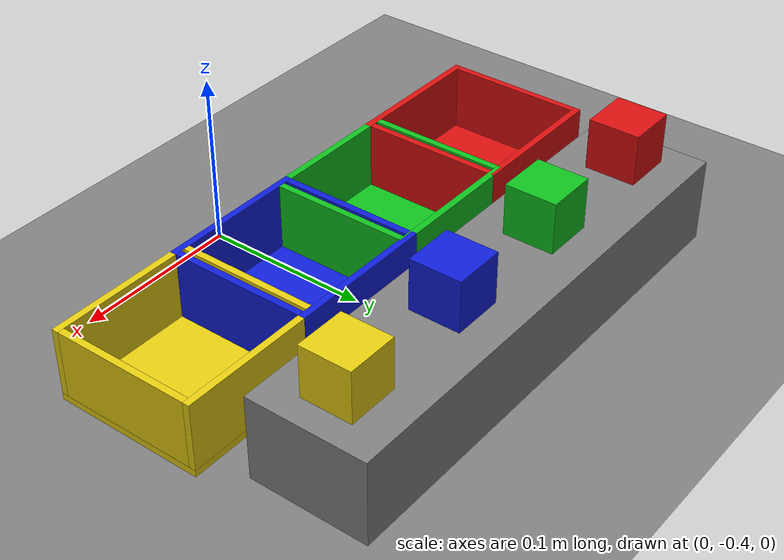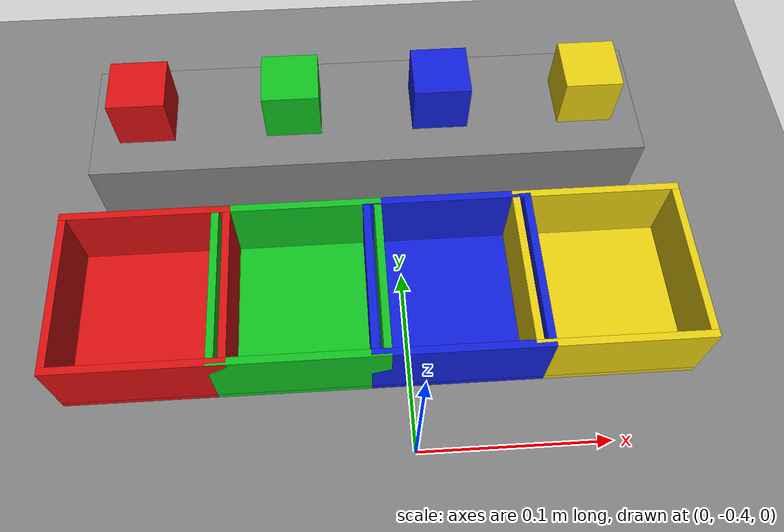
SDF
<?xml version="1.0" ?>
<sdf version="1.9">
  <world name="color_blocks_world">

    <physics name="1ms" type="ignored">
      <max_step_size>0.001</max_step_size>
      <real_time_factor>1.0</real_time_factor>
    </physics>

    <plugin filename="ignition-gazebo-physics-system" name="ignition::gazebo::systems::Physics"/>
    <plugin filename="ignition-gazebo-user-commands-system" name="ignition::gazebo::systems::UserCommands"/>
    <plugin filename="ignition-gazebo-scene-broadcaster-system" name="ignition::gazebo::systems::SceneBroadcaster"/>
    <plugin filename="libjetrover-grasp-velocity-system.so" name="jetrover::gazebo::systems::GraspVelocitySystem">
      <topic>/grasp/entity_command</topic>
      <command_timeout>0.2</command_timeout>
    </plugin>
    <plugin filename="ignition-gazebo-sensors-system" name="ignition::gazebo::systems::Sensors">
      <render_engine>ogre2</render_engine>
    </plugin>
    <plugin filename="ignition-gazebo-imu-system" name="ignition::gazebo::systems::Imu"/>

    <scene>
      <ambient>0.6 0.6 0.6 1</ambient>
      <background>0.7 0.7 0.75 1</background>
    </scene>

    <light type="directional" name="sun">
      <cast_shadows>true</cast_shadows>
      <pose>0 0 10 0 0 0</pose>
      <diffuse>0.9 0.9 0.9 1</diffuse>
      <specular>0.2 0.2 0.2 1</specular>
      <attenuation>
        <range>1000</range>
        <constant>0.9</constant>
        <linear>0.01</linear>
        <quadratic>0.001</quadratic>
      </attenuation>
      <direction>-0.3 0.1 -0.95</direction>
    </light>

    <!-- Fill light from the opposite side: kills the hard shadow that would
         otherwise push a block's LAB values outside its threshold range. -->
    <light type="directional" name="fill">
      <cast_shadows>false</cast_shadows>
      <pose>0 0 5 0 0 0</pose>
      <diffuse>0.4 0.4 0.4 1</diffuse>
      <specular>0.0 0.0 0.0 1</specular>
      <direction>0.6 -0.3 -0.7</direction>
    </light>

    <model name="ground_plane">
      <static>true</static>
      <link name="link">
        <collision name="collision">
          <geometry>
            <plane>
              <normal>0 0 1</normal>
              <size>50 50</size>
            </plane>
          </geometry>
          <surface>
            <friction>
              <ode>
                <mu>1.0</mu>
                <mu2>1.0</mu2>
              </ode>
            </friction>
          </surface>
        </collision>
        <visual name="visual">
          <geometry>
            <plane>
              <normal>0 0 1</normal>
              <size>50 50</size>
            </plane>
          </geometry>
          <!-- Neutral mid-grey: maximises LAB separation from every block
               colour, so the floor never leaks into a colour mask. -->
          <material>
            <ambient>0.5 0.5 0.5 1</ambient>
            <diffuse>0.5 0.5 0.5 1</diffuse>
            <specular>0.1 0.1 0.1 1</specular>
          </material>
        </visual>
      </link>
    </model>

    <!-- ================= pick blocks (3 cm cubes, dynamic) ================= -->

    <model name="block_red">
      <pose>-0.135 -0.22 0.065 0 0 0</pose>
      <link name="link">
        <inertial>
          <mass>0.05</mass>
          <inertia>
            <ixx>7.5e-6</ixx><ixy>0</ixy><ixz>0</ixz>
            <iyy>7.5e-6</iyy><iyz>0</iyz>
            <izz>7.5e-6</izz>
          </inertia>
        </inertial>
        <collision name="collision">
          <geometry><box><size>0.03 0.03 0.03</size></box></geometry>
          <surface>
            <friction><ode><mu>1.2</mu><mu2>1.2</mu2></ode></friction>
          </surface>
        </collision>
        <visual name="visual">
          <geometry><box><size>0.03 0.03 0.03</size></box></geometry>
          <material>
            <ambient>0.75 0.05 0.05 1</ambient>
            <diffuse>0.85 0.06 0.06 1</diffuse>
            <specular>0.05 0.05 0.05 1</specular>
          </material>
        </visual>
      </link>
      <plugin filename="ignition-gazebo-velocity-control-system" name="ignition::gazebo::systems::VelocityControl">
        <topic>/model/block_red/cmd_vel</topic>
      </plugin>
    </model>

    <model name="block_green">
      <pose>-0.055 -0.22 0.065 0 0 0</pose>
      <link name="link">
        <inertial>
          <mass>0.05</mass>
          <inertia>
            <ixx>7.5e-6</ixx><ixy>0</ixy><ixz>0</ixz>
            <iyy>7.5e-6</iyy><iyz>0</iyz>
            <izz>7.5e-6</izz>
          </inertia>
        </inertial>
        <collision name="collision">
          <geometry><box><size>0.03 0.03 0.03</size></box></geometry>
          <surface>
            <friction><ode><mu>1.2</mu><mu2>1.2</mu2></ode></friction>
          </surface>
        </collision>
        <visual name="visual">
          <geometry><box><size>0.03 0.03 0.03</size></box></geometry>
          <material>
            <ambient>0.05 0.65 0.10 1</ambient>
            <diffuse>0.06 0.75 0.12 1</diffuse>
            <specular>0.05 0.05 0.05 1</specular>
          </material>
        </visual>
      </link>
      <plugin filename="ignition-gazebo-velocity-control-system" name="ignition::gazebo::systems::VelocityControl">
        <topic>/model/block_green/cmd_vel</topic>
      </plugin>
    </model>

    <model name="block_shelf">
      <static>true</static>
      <pose>-0.015 -0.22 0.025 0 0 0</pose>
      <link name="link">
        <collision name="collision">
          <geometry><box><size>0.30 0.07 0.05</size></box></geometry>
        </collision>
        <visual name="visual">
          <geometry><box><size>0.30 0.07 0.05</size></box></geometry>
          <material>
            <ambient>0.5 0.5 0.5 1</ambient>
            <diffuse>0.5 0.5 0.5 1</diffuse>
          </material>
        </visual>
      </link>
    </model>

    <model name="block_blue">
      <pose>0.025 -0.22 0.065 0 0 0</pose>
      <link name="link">
        <inertial>
          <mass>0.05</mass>
          <inertia>
            <ixx>7.5e-6</ixx><ixy>0</ixy><ixz>0</ixz>
            <iyy>7.5e-6</iyy><iyz>0</iyz>
            <izz>7.5e-6</izz>
          </inertia>
        </inertial>
        <collision name="collision">
          <geometry><box><size>0.03 0.03 0.03</size></box></geometry>
          <surface>
            <friction><ode><mu>1.2</mu><mu2>1.2</mu2></ode></friction>
          </surface>
        </collision>
        <visual name="visual">
          <geometry><box><size>0.03 0.03 0.03</size></box></geometry>
          <material>
            <ambient>0.05 0.10 0.75 1</ambient>
            <diffuse>0.06 0.12 0.85 1</diffuse>
            <specular>0.05 0.05 0.05 1</specular>
          </material>
        </visual>
      </link>
      <plugin filename="ignition-gazebo-velocity-control-system" name="ignition::gazebo::systems::VelocityControl">
        <topic>/model/block_blue/cmd_vel</topic>
      </plugin>
    </model>

    <model name="block_yellow">
      <pose>0.105 -0.22 0.065 0 0 0</pose>
      <link name="link">
        <inertial>
          <mass>0.05</mass>
          <inertia>
            <ixx>7.5e-6</ixx><ixy>0</ixy><ixz>0</ixz>
            <iyy>7.5e-6</iyy><iyz>0</iyz>
            <izz>7.5e-6</izz>
          </inertia>
        </inertial>
        <collision name="collision">
          <geometry><box><size>0.03 0.03 0.03</size></box></geometry>
          <surface>
            <friction><ode><mu>1.2</mu><mu2>1.2</mu2></ode></friction>
          </surface>
        </collision>
        <visual name="visual">
          <geometry><box><size>0.03 0.03 0.03</size></box></geometry>
          <material>
            <ambient>0.80 0.70 0.05 1</ambient>
            <diffuse>0.90 0.80 0.06 1</diffuse>
            <specular>0.05 0.05 0.05 1</specular>
          </material>
        </visual>
      </link>
      <plugin filename="ignition-gazebo-velocity-control-system" name="ignition::gazebo::systems::VelocityControl">
        <topic>/model/block_yellow/cmd_vel</topic>
      </plugin>
    </model>

    <!-- ============ sorting bins (static place targets, shallow open boxes) -->

    <model name="bin_red">
      <static>true</static>
      <pose>-0.135 -0.32 0.002 0 0 0</pose>
      <link name="link">
        <!-- 9 cm square floor, 4 mm thick, centred at the bin pose -->
        <collision name="floor_collision">
          <geometry><box><size>0.09 0.09 0.004</size></box></geometry>
        </collision>
        <visual name="floor_visual">
          <geometry><box><size>0.09 0.09 0.004</size></box></geometry>
          <material>
            <ambient>0.75 0.05 0.05 1</ambient>
            <diffuse>0.85 0.06 0.06 1</diffuse>
          </material>
        </visual>
        <!-- Four 4 cm-high, 4 mm-thick walls; inner opening is 8.2 cm square -->
        <collision name="wall_front_collision">
          <pose>0 -0.043 0.022 0 0 0</pose>
          <geometry><box><size>0.09 0.004 0.04</size></box></geometry>
        </collision>
        <visual name="wall_front_visual">
          <pose>0 -0.043 0.022 0 0 0</pose>
          <geometry><box><size>0.09 0.004 0.04</size></box></geometry>
          <material>
            <ambient>0.75 0.05 0.05 1</ambient>
            <diffuse>0.85 0.06 0.06 1</diffuse>
          </material>
        </visual>
        <collision name="wall_back_collision">
          <pose>0 0.043 0.022 0 0 0</pose>
          <geometry><box><size>0.09 0.004 0.04</size></box></geometry>
        </collision>
        <visual name="wall_back_visual">
          <pose>0 0.043 0.022 0 0 0</pose>
          <geometry><box><size>0.09 0.004 0.04</size></box></geometry>
          <material>
            <ambient>0.75 0.05 0.05 1</ambient>
            <diffuse>0.85 0.06 0.06 1</diffuse>
          </material>
        </visual>
        <collision name="wall_left_collision">
          <pose>-0.043 0 0.022 0 0 0</pose>
          <geometry><box><size>0.004 0.082 0.04</size></box></geometry>
        </collision>
        <visual name="wall_left_visual">
          <pose>-0.043 0 0.022 0 0 0</pose>
          <geometry><box><size>0.004 0.082 0.04</size></box></geometry>
          <material>
            <ambient>0.75 0.05 0.05 1</ambient>
            <diffuse>0.85 0.06 0.06 1</diffuse>
          </material>
        </visual>
        <collision name="wall_right_collision">
          <pose>0.043 0 0.022 0 0 0</pose>
          <geometry><box><size>0.004 0.082 0.04</size></box></geometry>
        </collision>
        <visual name="wall_right_visual">
          <pose>0.043 0 0.022 0 0 0</pose>
          <geometry><box><size>0.004 0.082 0.04</size></box></geometry>
          <material>
            <ambient>0.75 0.05 0.05 1</ambient>
            <diffuse>0.85 0.06 0.06 1</diffuse>
          </material>
        </visual>
      </link>
    </model>

    <model name="bin_green">
      <static>true</static>
      <pose>-0.055 -0.32 0.002 0 0 0</pose>
      <link name="link">
        <!-- 9 cm square floor, 4 mm thick, centred at the bin pose -->
        <collision name="floor_collision">
          <geometry><box><size>0.09 0.09 0.004</size></box></geometry>
        </collision>
        <visual name="floor_visual">
          <geometry><box><size>0.09 0.09 0.004</size></box></geometry>
          <material>
            <ambient>0.05 0.65 0.10 1</ambient>
            <diffuse>0.06 0.75 0.12 1</diffuse>
          </material>
        </visual>
        <!-- Four 4 cm-high, 4 mm-thick walls; inner opening is 8.2 cm square -->
        <collision name="wall_front_collision">
          <pose>0 -0.043 0.022 0 0 0</pose>
          <geometry><box><size>0.09 0.004 0.04</size></box></geometry>
        </collision>
        <visual name="wall_front_visual">
          <pose>0 -0.043 0.022 0 0 0</pose>
          <geometry><box><size>0.09 0.004 0.04</size></box></geometry>
          <material>
            <ambient>0.05 0.65 0.10 1</ambient>
            <diffuse>0.06 0.75 0.12 1</diffuse>
          </material>
        </visual>
        <collision name="wall_back_collision">
          <pose>0 0.043 0.022 0 0 0</pose>
          <geometry><box><size>0.09 0.004 0.04</size></box></geometry>
        </collision>
        <visual name="wall_back_visual">
          <pose>0 0.043 0.022 0 0 0</pose>
          <geometry><box><size>0.09 0.004 0.04</size></box></geometry>
          <material>
            <ambient>0.05 0.65 0.10 1</ambient>
            <diffuse>0.06 0.75 0.12 1</diffuse>
          </material>
        </visual>
        <collision name="wall_left_collision">
          <pose>-0.043 0 0.022 0 0 0</pose>
          <geometry><box><size>0.004 0.082 0.04</size></box></geometry>
        </collision>
        <visual name="wall_left_visual">
          <pose>-0.043 0 0.022 0 0 0</pose>
          <geometry><box><size>0.004 0.082 0.04</size></box></geometry>
          <material>
            <ambient>0.05 0.65 0.10 1</ambient>
            <diffuse>0.06 0.75 0.12 1</diffuse>
          </material>
        </visual>
        <collision name="wall_right_collision">
          <pose>0.043 0 0.022 0 0 0</pose>
          <geometry><box><size>0.004 0.082 0.04</size></box></geometry>
        </collision>
        <visual name="wall_right_visual">
          <pose>0.043 0 0.022 0 0 0</pose>
          <geometry><box><size>0.004 0.082 0.04</size></box></geometry>
          <material>
            <ambient>0.05 0.65 0.10 1</ambient>
            <diffuse>0.06 0.75 0.12 1</diffuse>
          </material>
        </visual>
      </link>
    </model>

    <model name="bin_blue">
      <static>true</static>
      <pose>0.025 -0.32 0.002 0 0 0</pose>
      <link name="link">
        <!-- 9 cm square floor, 4 mm thick, centred at the bin pose -->
        <collision name="floor_collision">
          <geometry><box><size>0.09 0.09 0.004</size></box></geometry>
        </collision>
        <visual name="floor_visual">
          <geometry><box><size>0.09 0.09 0.004</size></box></geometry>
          <material>
            <ambient>0.05 0.10 0.75 1</ambient>
            <diffuse>0.06 0.12 0.85 1</diffuse>
          </material>
        </visual>
        <!-- Four 4 cm-high, 4 mm-thick walls; inner opening is 8.2 cm square -->
        <collision name="wall_front_collision">
          <pose>0 -0.043 0.022 0 0 0</pose>
          <geometry><box><size>0.09 0.004 0.04</size></box></geometry>
        </collision>
        <visual name="wall_front_visual">
          <pose>0 -0.043 0.022 0 0 0</pose>
          <geometry><box><size>0.09 0.004 0.04</size></box></geometry>
          <material>
            <ambient>0.05 0.10 0.75 1</ambient>
            <diffuse>0.06 0.12 0.85 1</diffuse>
          </material>
        </visual>
        <collision name="wall_back_collision">
          <pose>0 0.043 0.022 0 0 0</pose>
          <geometry><box><size>0.09 0.004 0.04</size></box></geometry>
        </collision>
        <visual name="wall_back_visual">
          <pose>0 0.043 0.022 0 0 0</pose>
          <geometry><box><size>0.09 0.004 0.04</size></box></geometry>
          <material>
            <ambient>0.05 0.10 0.75 1</ambient>
            <diffuse>0.06 0.12 0.85 1</diffuse>
          </material>
        </visual>
        <collision name="wall_left_collision">
          <pose>-0.043 0 0.022 0 0 0</pose>
          <geometry><box><size>0.004 0.082 0.04</size></box></geometry>
        </collision>
        <visual name="wall_left_visual">
          <pose>-0.043 0 0.022 0 0 0</pose>
          <geometry><box><size>0.004 0.082 0.04</size></box></geometry>
          <material>
            <ambient>0.05 0.10 0.75 1</ambient>
            <diffuse>0.06 0.12 0.85 1</diffuse>
          </material>
        </visual>
        <collision name="wall_right_collision">
          <pose>0.043 0 0.022 0 0 0</pose>
          <geometry><box><size>0.004 0.082 0.04</size></box></geometry>
        </collision>
        <visual name="wall_right_visual">
          <pose>0.043 0 0.022 0 0 0</pose>
          <geometry><box><size>0.004 0.082 0.04</size></box></geometry>
          <material>
            <ambient>0.05 0.10 0.75 1</ambient>
            <diffuse>0.06 0.12 0.85 1</diffuse>
          </material>
        </visual>
      </link>
    </model>

    <model name="bin_yellow">
      <static>true</static>
      <pose>0.105 -0.32 0.002 0 0 0</pose>
      <link name="link">
        <!-- 9 cm square floor, 4 mm thick, centred at the bin pose -->
        <collision name="floor_collision">
          <geometry><box><size>0.09 0.09 0.004</size></box></geometry>
        </collision>
        <visual name="floor_visual">
          <geometry><box><size>0.09 0.09 0.004</size></box></geometry>
          <material>
            <ambient>0.80 0.70 0.05 1</ambient>
            <diffuse>0.90 0.80 0.06 1</diffuse>
          </material>
        </visual>
        <!-- Four 4 cm-high, 4 mm-thick walls; inner opening is 8.2 cm square -->
        <collision name="wall_front_collision">
          <pose>0 -0.043 0.022 0 0 0</pose>
          <geometry><box><size>0.09 0.004 0.04</size></box></geometry>
        </collision>
        <visual name="wall_front_visual">
          <pose>0 -0.043 0.022 0 0 0</pose>
          <geometry><box><size>0.09 0.004 0.04</size></box></geometry>
          <material>
            <ambient>0.80 0.70 0.05 1</ambient>
            <diffuse>0.90 0.80 0.06 1</diffuse>
          </material>
        </visual>
        <collision name="wall_back_collision">
          <pose>0 0.043 0.022 0 0 0</pose>
          <geometry><box><size>0.09 0.004 0.04</size></box></geometry>
        </collision>
        <visual name="wall_back_visual">
          <pose>0 0.043 0.022 0 0 0</pose>
          <geometry><box><size>0.09 0.004 0.04</size></box></geometry>
          <material>
            <ambient>0.80 0.70 0.05 1</ambient>
            <diffuse>0.90 0.80 0.06 1</diffuse>
          </material>
        </visual>
        <collision name="wall_left_collision">
          <pose>-0.043 0 0.022 0 0 0</pose>
          <geometry><box><size>0.004 0.082 0.04</size></box></geometry>
        </collision>
        <visual name="wall_left_visual">
          <pose>-0.043 0 0.022 0 0 0</pose>
          <geometry><box><size>0.004 0.082 0.04</size></box></geometry>
          <material>
            <ambient>0.80 0.70 0.05 1</ambient>
            <diffuse>0.90 0.80 0.06 1</diffuse>
          </material>
        </visual>
        <collision name="wall_right_collision">
          <pose>0.043 0 0.022 0 0 0</pose>
          <geometry><box><size>0.004 0.082 0.04</size></box></geometry>
        </collision>
        <visual name="wall_right_visual">
          <pose>0.043 0 0.022 0 0 0</pose>
          <geometry><box><size>0.004 0.082 0.04</size></box></geometry>
          <material>
            <ambient>0.80 0.70 0.05 1</ambient>
            <diffuse>0.90 0.80 0.06 1</diffuse>
          </material>
        </visual>
      </link>
    </model>

  </world>
</sdf>
